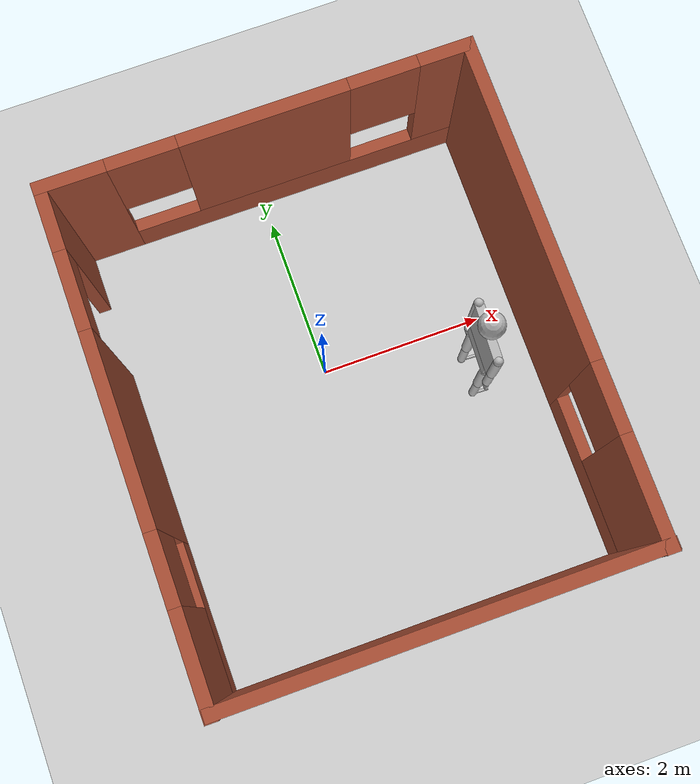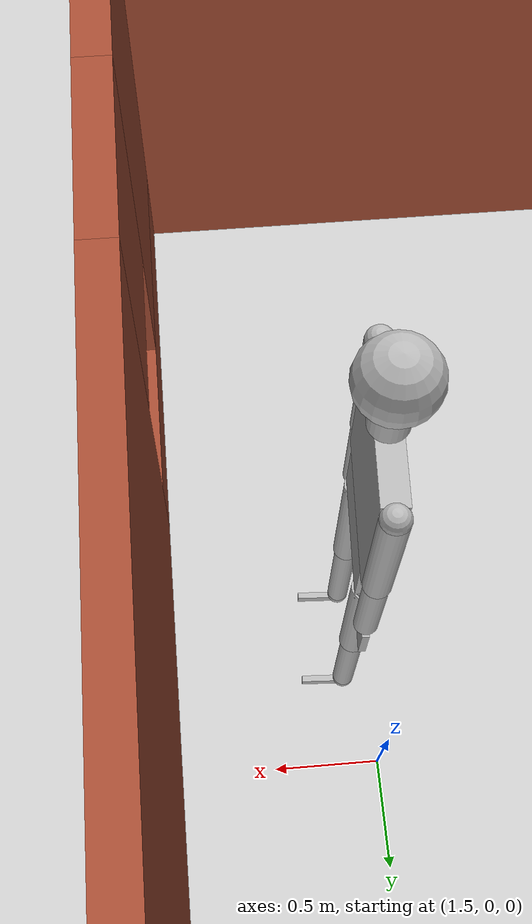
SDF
<sdf version="1.7">
 <world name="default">
  <light name="sun" type="directional">
   <pose>0 0 10 0 -0 0</pose>
   <diffuse>0.8 0.8 0.8 1</diffuse>
   <specular>0.2 0.2 0.2 1</specular>
   <attenuation>
    <range>1000</range>
    <constant>0.9</constant>
    <linear>0.01</linear>
    <quadratic>0.001</quadratic>
   </attenuation>
   <direction>-0.5 0.1 -0.9</direction>
   <spot><inner_angle>0</inner_angle><outer_angle>0</outer_angle><falloff>0</falloff></spot>
  </light>
  <model name="ground_plane">
   <static>1</static>
   <link name="link">
    <collision name="collision">
     <geometry><plane><normal>0 0 1</normal><size>100 100</size></plane></geometry>
     <surface>
      <contact><collide_bitmask>65535</collide_bitmask></contact>
      <friction><ode><mu>100</mu><mu2>50</mu2></ode></friction>
     </surface>
    </collision>
    <visual name="visual">
     <cast_shadows>0</cast_shadows>
     <geometry><plane><normal>0 0 1</normal><size>100 100</size></plane></geometry>
     <material>
      <script><uri>file://media/materials/scripts/gazebo.material</uri><name>Gazebo/Grey</name></script>
     </material>
    </visual>
   </link>
  </model>
  <gravity>0 0 -9.8</gravity>
  <magnetic_field>6e-06 2.3e-05 -4.2e-05</magnetic_field>
  <atmosphere type="adiabatic"/>
  <physics type="ode">
   <max_step_size>0.001</max_step_size>
   <real_time_factor>1</real_time_factor>
   <real_time_update_rate>1000</real_time_update_rate>
  </physics>
  <scene><ambient>0.4 0.4 0.4 1</ambient><background>0.7 0.7 0.7 1</background><shadows>1</shadows></scene>
  <audio><device>default</device></audio>
  <spherical_coordinates>
   <surface_model>EARTH_WGS84</surface_model>
   <latitude_deg>0</latitude_deg>
   <longitude_deg>0</longitude_deg>
   <elevation>0</elevation>
   <heading_deg>0</heading_deg>
  </spherical_coordinates>
  <model name="SimpleBuilding">
   <pose>0.104168 0.47598 0 0 -0 0</pose>
   <link name="Wall_0">
    <pose>0.005 1.91257 0 0 -0 0</pose>
    <visual name="Wall_0_Visual_0">
     <pose>-2.0975 0 1.25 0 -0 0</pose>
     <geometry><box><size>0.805 0.15 2.5</size></box></geometry>
     <material>
      <script><uri>file://media/materials/scripts/gazebo.material</uri><name>Gazebo/Bricks</name></script>
      <ambient>1 1 1 1</ambient>
     </material>
     <meta><layer>0</layer></meta>
    </visual>
    <collision name="Wall_0_Collision_0">
     <geometry><box><size>0.805 0.15 2.5</size></box></geometry>
     <pose>-2.0975 0 1.25 0 -0 0</pose>
    </collision>
    <visual name="Wall_0_Visual_1">
     <pose>0.4025 0 0.25 0 -0 0</pose>
     <geometry><box><size>4.195 0.15 0.5</size></box></geometry>
     <material>
      <script><uri>file://media/materials/scripts/gazebo.material</uri><name>Gazebo/Bricks</name></script>
      <ambient>1 1 1 1</ambient>
     </material>
     <meta><layer>0</layer></meta>
    </visual>
    <collision name="Wall_0_Collision_1">
     <geometry><box><size>4.195 0.15 0.5</size></box></geometry>
     <pose>0.4025 0 0.25 0 -0 0</pose>
    </collision>
    <visual name="Wall_0_Visual_2">
     <pose>0.075 0 1.5 0 -0 0</pose>
     <geometry><box><size>1.94 0.15 2</size></box></geometry>
     <material>
      <script><uri>file://media/materials/scripts/gazebo.material</uri><name>Gazebo/Bricks</name></script>
      <ambient>1 1 1 1</ambient>
     </material>
     <meta><layer>0</layer></meta>
    </visual>
    <collision name="Wall_0_Collision_2">
     <geometry><box><size>1.94 0.15 2</size></box></geometry>
     <pose>0.075 0 1.5 0 -0 0</pose>
    </collision>
    <visual name="Wall_0_Visual_3">
     <pose>2.1725 0 1.5 0 -0 0</pose>
     <geometry><box><size>0.655 0.15 2</size></box></geometry>
     <material>
      <script><uri>file://media/materials/scripts/gazebo.material</uri><name>Gazebo/Bricks</name></script>
      <ambient>1 1 1 1</ambient>
     </material>
     <meta><layer>0</layer></meta>
    </visual>
    <collision name="Wall_0_Collision_3">
     <geometry><box><size>0.655 0.15 2</size></box></geometry>
     <pose>2.1725 0 1.5 0 -0 0</pose>
    </collision>
    <visual name="Wall_0_Visual_4">
     <pose>-1.295 0 1.9 0 -0 0</pose>
     <geometry><box><size>0.8 0.15 1.2</size></box></geometry>
     <material>
      <script><uri>file://media/materials/scripts/gazebo.material</uri><name>Gazebo/Bricks</name></script>
      <ambient>1 1 1 1</ambient>
     </material>
     <meta><layer>0</layer></meta>
    </visual>
    <collision name="Wall_0_Collision_4">
     <geometry><box><size>0.8 0.15 1.2</size></box></geometry>
     <pose>-1.295 0 1.9 0 -0 0</pose>
    </collision>
    <visual name="Wall_0_Visual_5">
     <pose>1.445 0 1.9 0 -0 0</pose>
     <geometry><box><size>0.8 0.15 1.2</size></box></geometry>
     <material>
      <script><uri>file://media/materials/scripts/gazebo.material</uri><name>Gazebo/Bricks</name></script>
      <ambient>1 1 1 1</ambient>
     </material>
     <meta><layer>0</layer></meta>
    </visual>
    <collision name="Wall_0_Collision_5">
     <geometry><box><size>0.8 0.15 1.2</size></box></geometry>
     <pose>1.445 0 1.9 0 -0 0</pose>
    </collision>
   </link>
   <link name="Wall_1">
    <pose>2.425 -0.947434 0 0 -0 -1.57255</pose>
    <visual name="Wall_1_Visual_0">
     <pose>-1.0405 0 1.25 0 -0 0</pose>
     <geometry><box><size>3.78901 0.15 2.5</size></box></geometry>
     <material>
      <script><uri>file://media/materials/scripts/gazebo.material</uri><name>Gazebo/Bricks</name></script>
      <ambient>1 1 1 1</ambient>
     </material>
     <meta><layer>0</layer></meta>
    </visual>
    <collision name="Wall_1_Collision_0">
     <geometry><box><size>3.78901 0.15 2.5</size></box></geometry>
     <pose>-1.0405 0 1.25 0 -0 0</pose>
    </collision>
    <visual name="Wall_1_Visual_1">
     <pose>1.8945 0 0.25 0 -0 0</pose>
     <geometry><box><size>2.081 0.15 0.5</size></box></geometry>
     <material>
      <script><uri>file://media/materials/scripts/gazebo.material</uri><name>Gazebo/Bricks</name></script>
      <ambient>1 1 1 1</ambient>
     </material>
     <meta><layer>0</layer></meta>
    </visual>
    <collision name="Wall_1_Collision_1">
     <geometry><box><size>2.081 0.15 0.5</size></box></geometry>
     <pose>1.8945 0 0.25 0 -0 0</pose>
    </collision>
    <visual name="Wall_1_Visual_2">
     <pose>2.2945 0 1.5 0 -0 0</pose>
     <geometry><box><size>1.281 0.15 2</size></box></geometry>
     <material>
      <script><uri>file://media/materials/scripts/gazebo.material</uri><name>Gazebo/Bricks</name></script>
      <ambient>1 1 1 1</ambient>
     </material>
     <meta><layer>0</layer></meta>
    </visual>
    <collision name="Wall_1_Collision_2">
     <geometry><box><size>1.281 0.15 2</size></box></geometry>
     <pose>2.2945 0 1.5 0 -0 0</pose>
    </collision>
    <visual name="Wall_1_Visual_3">
     <pose>1.254 0 1.9 0 -0 0</pose>
     <geometry><box><size>0.8 0.15 1.2</size></box></geometry>
     <material>
      <script><uri>file://media/materials/scripts/gazebo.material</uri><name>Gazebo/Bricks</name></script>
      <ambient>1 1 1 1</ambient>
     </material>
     <meta><layer>0</layer></meta>
    </visual>
    <collision name="Wall_1_Collision_3">
     <geometry><box><size>0.8 0.15 1.2</size></box></geometry>
     <pose>1.254 0 1.9 0 -0 0</pose>
    </collision>
   </link>
   <link name="Wall_2">
    <collision name="Wall_2_Collision">
     <geometry><box><size>5 0.15 2.5</size></box></geometry>
     <pose>0 0 1.25 0 -0 0</pose>
    </collision>
    <visual name="Wall_2_Visual">
     <pose>0 0 1.25 0 -0 0</pose>
     <geometry><box><size>5 0.15 2.5</size></box></geometry>
     <material>
      <script><uri>file://media/materials/scripts/gazebo.material</uri><name>Gazebo/Bricks</name></script>
      <ambient>1 1 1 1</ambient>
     </material>
     <meta><layer>0</layer></meta>
    </visual>
    <pose>0.005 -3.79743 0 0 -0 3.14159</pose>
   </link>
   <link name="Wall_5">
    <pose>-2.425 -0.947434 0 0 -0 -1.57255</pose>
    <visual name="Wall_5_Visual_0">
     <pose>-2.52751 0 1.25 0 -0 0</pose>
     <geometry><box><size>0.814981 0.15 2.5</size></box></geometry>
     <material>
      <script><uri>file://media/materials/scripts/gazebo.material</uri><name>Gazebo/Bricks</name></script>
      <ambient>0.760784 0.662745 0.627451 1</ambient>
     </material>
     <meta><layer>0</layer></meta>
    </visual>
    <collision name="Wall_5_Collision_0">
     <geometry><box><size>0.814981 0.15 2.5</size></box></geometry>
     <pose>-2.52751 0 1.25 0 -0 0</pose>
    </collision>
    <visual name="Wall_5_Visual_1">
     <pose>-0.125 0 1.25 0 -0 0</pose>
     <geometry><box><size>2.19005 0.15 2.5</size></box></geometry>
     <material>
      <script><uri>file://media/materials/scripts/gazebo.material</uri><name>Gazebo/Bricks</name></script>
      <ambient>0.760784 0.662745 0.627451 1</ambient>
     </material>
     <meta><layer>0</layer></meta>
    </visual>
    <collision name="Wall_5_Collision_1">
     <geometry><box><size>2.19005 0.15 2.5</size></box></geometry>
     <pose>-0.125 0 1.25 0 -0 0</pose>
    </collision>
    <visual name="Wall_5_Visual_2">
     <pose>1.95251 0 0.25 0 -0 0</pose>
     <geometry><box><size>1.96498 0.15 0.5</size></box></geometry>
     <material>
      <script><uri>file://media/materials/scripts/gazebo.material</uri><name>Gazebo/Bricks</name></script>
      <ambient>0.760784 0.662745 0.627451 1</ambient>
     </material>
     <meta><layer>0</layer></meta>
    </visual>
    <collision name="Wall_5_Collision_2">
     <geometry><box><size>1.96498 0.15 0.5</size></box></geometry>
     <pose>1.95251 0 0.25 0 -0 0</pose>
    </collision>
    <visual name="Wall_5_Visual_3">
     <pose>2.35251 0 1.5 0 -0 0</pose>
     <geometry><box><size>1.16498 0.15 2</size></box></geometry>
     <material>
      <script><uri>file://media/materials/scripts/gazebo.material</uri><name>Gazebo/Bricks</name></script>
      <ambient>0.760784 0.662745 0.627451 1</ambient>
     </material>
     <meta><layer>0</layer></meta>
    </visual>
    <collision name="Wall_5_Collision_3">
     <geometry><box><size>1.16498 0.15 2</size></box></geometry>
     <pose>2.35251 0 1.5 0 -0 0</pose>
    </collision>
    <visual name="Wall_5_Visual_4">
     <pose>1.37002 0 1.9 0 -0 0</pose>
     <geometry><box><size>0.8 0.15 1.2</size></box></geometry>
     <material>
      <script><uri>file://media/materials/scripts/gazebo.material</uri><name>Gazebo/Bricks</name></script>
      <ambient>0.760784 0.662745 0.627451 1</ambient>
     </material>
     <meta><layer>0</layer></meta>
    </visual>
    <collision name="Wall_5_Collision_4">
     <geometry><box><size>0.8 0.15 1.2</size></box></geometry>
     <pose>1.37002 0 1.9 0 -0 0</pose>
    </collision>
    <visual name="Wall_5_Visual_5">
     <pose>-1.67002 0 2.25 0 -0 0</pose>
     <geometry><box><size>0.9 0.15 0.5</size></box></geometry>
     <material>
      <script><uri>file://media/materials/scripts/gazebo.material</uri><name>Gazebo/Bricks</name></script>
      <ambient>0.760784 0.662745 0.627451 1</ambient>
     </material>
     <meta><layer>0</layer></meta>
    </visual>
    <collision name="Wall_5_Collision_5">
     <geometry><box><size>0.9 0.15 0.5</size></box></geometry>
     <pose>-1.67002 0 2.25 0 -0 0</pose>
    </collision>
   </link>
   <static>1</static>
  </model>
  <model name="ragdoll">
   <pose>1.62202 -0.641848 1.39994 3.1e-05 0.002282 -0.047532</pose>
   <link name="hip">
    <inertial>
     <inertia><ixx>0.1</ixx><ixy>0</ixy><ixz>0</ixz><iyy>0.1</iyy><iyz>0</iyz><izz>0.1</izz></inertia>
     <mass>10</mass>
    </inertial>
    <collision name="hip_geom">
     <pose>0 0 0.125 0 -0 0</pose>
     <geometry><box><size>0.1 0.5 0.25</size></box></geometry>
     <surface>
      <friction><ode><mu>-1</mu><mu2>-1</mu2><fdir1>0 0 0</fdir1><slip1>0</slip1><slip2>0</slip2></ode></friction>
      <bounce><restitution_coefficient>0</restitution_coefficient><threshold>100000</threshold></bounce>
      <contact>
       <ode>
        <soft_cfm>0</soft_cfm>
        <soft_erp>0.2</soft_erp>
        <kp>1e+12</kp>
        <kd>1</kd>
        <max_vel>0</max_vel>
        <min_depth>0.001</min_depth>
       </ode>
      </contact>
     </surface>
    </collision>
    <visual name="hip_geom_visual">
     <pose>0 0 0.125 0 -0 0</pose>
     <geometry><box><size>0.1 0.5 0.25</size></box></geometry>
    </visual>
    <gravity>0</gravity>
   </link>
   <link name="l_thigh_pan">
    <pose>0 0.22 0 0 -0 0</pose>
    <inertial>
     <inertia><ixx>0.01</ixx><ixy>0</ixy><ixz>0</ixz><iyy>0.01</iyy><iyz>0</iyz><izz>0.01</izz></inertia>
     <mass>1</mass>
    </inertial>
    <collision name="l_thigh_pan_geom">
     <pose>0 0 -0.03 0 -0 0</pose>
     <geometry><sphere><radius>0.06</radius></sphere></geometry>
     <surface>
      <friction><ode><mu>-1</mu><mu2>-1</mu2><fdir1>0 0 0</fdir1><slip1>0</slip1><slip2>0</slip2></ode></friction>
      <bounce><restitution_coefficient>0</restitution_coefficient><threshold>100000</threshold></bounce>
      <contact>
       <ode>
        <soft_cfm>0</soft_cfm>
        <soft_erp>0.2</soft_erp>
        <kp>1e+12</kp>
        <kd>1</kd>
        <max_vel>0</max_vel>
        <min_depth>0.001</min_depth>
       </ode>
      </contact>
     </surface>
    </collision>
    <visual name="l_thigh_pan_geom_visual">
     <pose>0 0 -0.03 0 -0 0</pose>
     <geometry><sphere><radius>0.06</radius></sphere></geometry>
    </visual>
    <gravity>0</gravity>
   </link>
   <link name="l_thigh_lift">
    <pose>0 0.22 0 0 -0 0</pose>
    <inertial>
     <inertia><ixx>0.05</ixx><ixy>0</ixy><ixz>0</ixz><iyy>0.05</iyy><iyz>0</iyz><izz>0.05</izz></inertia>
     <mass>5</mass>
    </inertial>
    <collision name="l_thigh_lift_geom">
     <pose>0 0 -0.35 0 -0 0</pose>
     <geometry><cylinder><radius>0.06</radius><length>0.7</length></cylinder></geometry>
     <surface>
      <friction><ode><mu>-1</mu><mu2>-1</mu2><fdir1>0 0 0</fdir1><slip1>0</slip1><slip2>0</slip2></ode></friction>
      <bounce><restitution_coefficient>0</restitution_coefficient><threshold>100000</threshold></bounce>
      <contact>
       <ode>
        <soft_cfm>0</soft_cfm>
        <soft_erp>0.2</soft_erp>
        <kp>1e+12</kp>
        <kd>1</kd>
        <max_vel>0</max_vel>
        <min_depth>0.001</min_depth>
       </ode>
      </contact>
     </surface>
    </collision>
    <visual name="l_thigh_lift_geom_visual">
     <pose>0 0 -0.35 0 -0 0</pose>
     <geometry><cylinder><radius>0.06</radius><length>0.7</length></cylinder></geometry>
    </visual>
    <gravity>0</gravity>
   </link>
   <link name="l_calf">
    <pose>0 0.22 -0.7 0 -0 0</pose>
    <inertial>
     <inertia><ixx>0.02</ixx><ixy>0</ixy><ixz>0</ixz><iyy>0.02</iyy><iyz>0</iyz><izz>0.02</izz></inertia>
     <mass>2</mass>
    </inertial>
    <collision name="l_calf_geom">
     <pose>0 0 -0.3 0 -0 0</pose>
     <geometry><cylinder><radius>0.05</radius><length>0.6</length></cylinder></geometry>
     <surface>
      <friction><ode><mu>-1</mu><mu2>-1</mu2><fdir1>0 0 0</fdir1><slip1>0</slip1><slip2>0</slip2></ode></friction>
      <bounce><restitution_coefficient>0</restitution_coefficient><threshold>100000</threshold></bounce>
      <contact>
       <ode>
        <soft_cfm>0</soft_cfm>
        <soft_erp>0.2</soft_erp>
        <kp>1e+12</kp>
        <kd>1</kd>
        <max_vel>0</max_vel>
        <min_depth>0.001</min_depth>
       </ode>
      </contact>
     </surface>
    </collision>
    <visual name="l_calf_geom_visual">
     <pose>0 0 -0.3 0 -0 0</pose>
     <geometry><cylinder><radius>0.05</radius><length>0.6</length></cylinder></geometry>
    </visual>
    <gravity>0</gravity>
   </link>
   <link name="l_ankle">
    <pose>0 0.22 -1.325 0 -0 0</pose>
    <inertial>
     <inertia><ixx>0.01</ixx><ixy>0</ixy><ixz>0</ixz><iyy>0.01</iyy><iyz>0</iyz><izz>0.01</izz></inertia>
     <mass>1</mass>
    </inertial>
    <collision name="l_ankle_geom">
     <geometry><sphere><radius>0.05</radius></sphere></geometry>
     <surface>
      <friction><ode><mu>-1</mu><mu2>-1</mu2><fdir1>0 0 0</fdir1><slip1>0</slip1><slip2>0</slip2></ode></friction>
      <bounce><restitution_coefficient>0</restitution_coefficient><threshold>100000</threshold></bounce>
      <contact>
       <ode>
        <soft_cfm>0</soft_cfm>
        <soft_erp>0.2</soft_erp>
        <kp>1e+12</kp>
        <kd>1</kd>
        <max_vel>0</max_vel>
        <min_depth>0.001</min_depth>
       </ode>
      </contact>
     </surface>
    </collision>
    <visual name="l_ankle_geom_visual"><geometry><sphere><radius>0.05</radius></sphere></geometry></visual>
    <gravity>0</gravity>
   </link>
   <link name="l_foot">
    <pose>0 0.22 -1.35 0 -0 0</pose>
    <inertial>
     <pose>0.1 0 0 0 -0 0</pose>
     <inertia><ixx>0.01</ixx><ixy>0</ixy><ixz>0</ixz><iyy>0.01</iyy><iyz>0</iyz><izz>0.01</izz></inertia>
     <mass>1</mass>
    </inertial>
    <collision name="l_foot_geom">
     <pose>0.1 0 -0.025 0 -0 0</pose>
     <geometry><box><size>0.2 0.03 0.05</size></box></geometry>
     <surface>
      <friction><ode><mu>-1</mu><mu2>-1</mu2><fdir1>0 0 0</fdir1><slip1>0</slip1><slip2>0</slip2></ode></friction>
      <bounce><restitution_coefficient>0</restitution_coefficient><threshold>100000</threshold></bounce>
      <contact>
       <ode>
        <soft_cfm>0</soft_cfm>
        <soft_erp>0.2</soft_erp>
        <kp>1e+12</kp>
        <kd>1</kd>
        <max_vel>0</max_vel>
        <min_depth>0.001</min_depth>
       </ode>
      </contact>
     </surface>
    </collision>
    <visual name="l_foot_geom_visual">
     <pose>0.1 0 -0.025 0 -0 0</pose>
     <geometry><box><size>0.2 0.03 0.05</size></box></geometry>
    </visual>
   </link>
   <link name="r_thigh_pan">
    <pose>0 -0.22 0 0 -0 0</pose>
    <inertial>
     <inertia><ixx>0.01</ixx><ixy>0</ixy><ixz>0</ixz><iyy>0.01</iyy><iyz>0</iyz><izz>0.01</izz></inertia>
     <mass>1</mass>
    </inertial>
    <collision name="r_thigh_pan_geom">
     <pose>0 0 -0.03 0 -0 0</pose>
     <geometry><sphere><radius>0.06</radius></sphere></geometry>
     <surface>
      <friction><ode><mu>-1</mu><mu2>-1</mu2><fdir1>0 0 0</fdir1><slip1>0</slip1><slip2>0</slip2></ode></friction>
      <bounce><restitution_coefficient>0</restitution_coefficient><threshold>100000</threshold></bounce>
      <contact>
       <ode>
        <soft_cfm>0</soft_cfm>
        <soft_erp>0.2</soft_erp>
        <kp>1e+12</kp>
        <kd>1</kd>
        <max_vel>0</max_vel>
        <min_depth>0.001</min_depth>
       </ode>
      </contact>
     </surface>
    </collision>
    <visual name="r_thigh_pan_geom_visual">
     <pose>0 0 -0.03 0 -0 0</pose>
     <geometry><sphere><radius>0.06</radius></sphere></geometry>
    </visual>
    <gravity>0</gravity>
   </link>
   <link name="r_thigh_lift">
    <pose>0 -0.22 0 0 -0 0</pose>
    <inertial>
     <inertia><ixx>0.05</ixx><ixy>0</ixy><ixz>0</ixz><iyy>0.05</iyy><iyz>0</iyz><izz>0.05</izz></inertia>
     <mass>5</mass>
    </inertial>
    <collision name="r_thigh_lift_geom">
     <pose>0 0 -0.35 0 -0 0</pose>
     <geometry><cylinder><radius>0.06</radius><length>0.7</length></cylinder></geometry>
     <surface>
      <friction><ode><mu>-1</mu><mu2>-1</mu2><fdir1>0 0 0</fdir1><slip1>0</slip1><slip2>0</slip2></ode></friction>
      <bounce><restitution_coefficient>0</restitution_coefficient><threshold>100000</threshold></bounce>
      <contact>
       <ode>
        <soft_cfm>0</soft_cfm>
        <soft_erp>0.2</soft_erp>
        <kp>1e+12</kp>
        <kd>1</kd>
        <max_vel>0</max_vel>
        <min_depth>0.001</min_depth>
       </ode>
      </contact>
     </surface>
    </collision>
    <visual name="r_thigh_lift_geom_visual">
     <pose>0 0 -0.35 0 -0 0</pose>
     <geometry><cylinder><radius>0.06</radius><length>0.7</length></cylinder></geometry>
    </visual>
    <gravity>0</gravity>
   </link>
   <link name="r_calf">
    <pose>0 -0.22 -0.7 0 -0 0</pose>
    <inertial>
     <inertia><ixx>0.02</ixx><ixy>0</ixy><ixz>0</ixz><iyy>0.02</iyy><iyz>0</iyz><izz>0.02</izz></inertia>
     <mass>2</mass>
    </inertial>
    <collision name="r_calf_geom">
     <pose>0 0 -0.3 0 -0 0</pose>
     <geometry><cylinder><radius>0.05</radius><length>0.6</length></cylinder></geometry>
     <surface>
      <friction><ode><mu>-1</mu><mu2>-1</mu2><fdir1>0 0 0</fdir1><slip1>0</slip1><slip2>0</slip2></ode></friction>
      <bounce><restitution_coefficient>0</restitution_coefficient><threshold>100000</threshold></bounce>
      <contact>
       <ode>
        <soft_cfm>0</soft_cfm>
        <soft_erp>0.2</soft_erp>
        <kp>1e+12</kp>
        <kd>1</kd>
        <max_vel>0</max_vel>
        <min_depth>0.001</min_depth>
       </ode>
      </contact>
     </surface>
    </collision>
    <visual name="r_calf_geom_visual">
     <pose>0 0 -0.3 0 -0 0</pose>
     <geometry><cylinder><radius>0.05</radius><length>0.6</length></cylinder></geometry>
    </visual>
    <gravity>0</gravity>
   </link>
   <link name="r_ankle">
    <pose>0 -0.22 -1.325 0 -0 0</pose>
    <inertial>
     <inertia><ixx>0.01</ixx><ixy>0</ixy><ixz>0</ixz><iyy>0.01</iyy><iyz>0</iyz><izz>0.01</izz></inertia>
     <mass>1</mass>
    </inertial>
    <collision name="r_ankle_geom">
     <geometry><sphere><radius>0.05</radius></sphere></geometry>
     <surface>
      <friction><ode><mu>-1</mu><mu2>-1</mu2><fdir1>0 0 0</fdir1><slip1>0</slip1><slip2>0</slip2></ode></friction>
      <bounce><restitution_coefficient>0</restitution_coefficient><threshold>100000</threshold></bounce>
      <contact>
       <ode>
        <soft_cfm>0</soft_cfm>
        <soft_erp>0.2</soft_erp>
        <kp>1e+12</kp>
        <kd>1</kd>
        <max_vel>0</max_vel>
        <min_depth>0.001</min_depth>
       </ode>
      </contact>
     </surface>
    </collision>
    <visual name="r_ankle_geom_visual"><geometry><sphere><radius>0.05</radius></sphere></geometry></visual>
    <gravity>0</gravity>
   </link>
   <link name="r_foot">
    <pose>0 -0.22 -1.35 0 -0 0</pose>
    <inertial>
     <pose>0.1 0 0 0 -0 0</pose>
     <inertia><ixx>0.01</ixx><ixy>0</ixy><ixz>0</ixz><iyy>0.01</iyy><iyz>0</iyz><izz>0.01</izz></inertia>
     <mass>1</mass>
    </inertial>
    <collision name="r_foot_geom">
     <pose>0.1 0 -0.025 0 -0 0</pose>
     <geometry><box><size>0.2 0.03 0.05</size></box></geometry>
     <surface>
      <friction><ode><mu>-1</mu><mu2>-1</mu2><fdir1>0 0 0</fdir1><slip1>0</slip1><slip2>0</slip2></ode></friction>
      <bounce><restitution_coefficient>0</restitution_coefficient><threshold>100000</threshold></bounce>
      <contact>
       <ode>
        <soft_cfm>0</soft_cfm>
        <soft_erp>0.2</soft_erp>
        <kp>1e+12</kp>
        <kd>1</kd>
        <max_vel>0</max_vel>
        <min_depth>0.001</min_depth>
       </ode>
      </contact>
     </surface>
    </collision>
    <visual name="r_foot_geom_visual">
     <pose>0.1 0 -0.025 0 -0 0</pose>
     <geometry><box><size>0.2 0.03 0.05</size></box></geometry>
    </visual>
   </link>
   <link name="torso">
    <pose>0 0 0.25 0 -0 0</pose>
    <inertial>
     <inertia><ixx>0.3</ixx><ixy>0</ixy><ixz>0</ixz><iyy>0.3</iyy><iyz>0</iyz><izz>0.3</izz></inertia>
     <mass>30</mass>
    </inertial>
    <collision name="torso_geom">
     <pose>0 0 0.35 0 -0 0</pose>
     <geometry><box><size>0.1 0.6 0.7</size></box></geometry>
     <surface>
      <friction><ode><mu>-1</mu><mu2>-1</mu2><fdir1>0 0 0</fdir1><slip1>0</slip1><slip2>0</slip2></ode></friction>
      <bounce><restitution_coefficient>0</restitution_coefficient><threshold>100000</threshold></bounce>
      <contact>
       <ode>
        <soft_cfm>0</soft_cfm>
        <soft_erp>0.2</soft_erp>
        <kp>1e+12</kp>
        <kd>1</kd>
        <max_vel>0</max_vel>
        <min_depth>0.001</min_depth>
       </ode>
      </contact>
     </surface>
    </collision>
    <visual name="torso_geom_visual">
     <pose>0 0 0.35 0 -0 0</pose>
     <geometry><box><size>0.1 0.6 0.7</size></box></geometry>
    </visual>
    <gravity>0</gravity>
   </link>
   <link name="l_shoulder">
    <pose>0 0.3275 0.9225 0 -0 0</pose>
    <inertial>
     <inertia><ixx>0.01</ixx><ixy>0</ixy><ixz>0</ixz><iyy>0.01</iyy><iyz>0</iyz><izz>0.01</izz></inertia>
     <mass>1</mass>
    </inertial>
    <collision name="l_shoulder_geom">
     <geometry><sphere><radius>0.055</radius></sphere></geometry>
     <surface>
      <friction><ode><mu>-1</mu><mu2>-1</mu2><fdir1>0 0 0</fdir1><slip1>0</slip1><slip2>0</slip2></ode></friction>
      <bounce><restitution_coefficient>0</restitution_coefficient><threshold>100000</threshold></bounce>
      <contact>
       <ode>
        <soft_cfm>0</soft_cfm>
        <soft_erp>0.2</soft_erp>
        <kp>1e+12</kp>
        <kd>1</kd>
        <max_vel>0</max_vel>
        <min_depth>0.001</min_depth>
       </ode>
      </contact>
     </surface>
    </collision>
    <visual name="l_shoulder_geom_visual"><geometry><sphere><radius>0.055</radius></sphere></geometry></visual>
    <gravity>0</gravity>
   </link>
   <link name="l_upper_arm">
    <pose>0 0.3275 0.9225 0 -0 0</pose>
    <inertial>
     <inertia><ixx>0.02</ixx><ixy>0</ixy><ixz>0</ixz><iyy>0.02</iyy><iyz>0</iyz><izz>0.02</izz></inertia>
     <mass>2</mass>
    </inertial>
    <collision name="l_upper_arm_geom">
     <pose>0 0 -0.3 0 -0 0</pose>
     <geometry><cylinder><radius>0.055</radius><length>0.6</length></cylinder></geometry>
     <surface>
      <friction><ode><mu>-1</mu><mu2>-1</mu2><fdir1>0 0 0</fdir1><slip1>0</slip1><slip2>0</slip2></ode></friction>
      <bounce><restitution_coefficient>0</restitution_coefficient><threshold>100000</threshold></bounce>
      <contact>
       <ode>
        <soft_cfm>0</soft_cfm>
        <soft_erp>0.2</soft_erp>
        <kp>1e+12</kp>
        <kd>1</kd>
        <max_vel>0</max_vel>
        <min_depth>0.001</min_depth>
       </ode>
      </contact>
     </surface>
    </collision>
    <visual name="l_upper_arm_geom_visual">
     <pose>0 0 -0.3 0 -0 0</pose>
     <geometry><cylinder><radius>0.055</radius><length>0.6</length></cylinder></geometry>
    </visual>
    <gravity>0</gravity>
   </link>
   <link name="l_forearm">
    <pose>0 0.3275 0.3225 0 -0 0</pose>
    <inertial>
     <inertia><ixx>0.01</ixx><ixy>0</ixy><ixz>0</ixz><iyy>0.01</iyy><iyz>0</iyz><izz>0.01</izz></inertia>
     <mass>1</mass>
    </inertial>
    <collision name="l_forearm_geom">
     <pose>0 0 -0.225 0 -0 0</pose>
     <geometry><cylinder><radius>0.05</radius><length>0.45</length></cylinder></geometry>
     <surface>
      <friction><ode><mu>-1</mu><mu2>-1</mu2><fdir1>0 0 0</fdir1><slip1>0</slip1><slip2>0</slip2></ode></friction>
      <bounce><restitution_coefficient>0</restitution_coefficient><threshold>100000</threshold></bounce>
      <contact>
       <ode>
        <soft_cfm>0</soft_cfm>
        <soft_erp>0.2</soft_erp>
        <kp>1e+12</kp>
        <kd>1</kd>
        <max_vel>0</max_vel>
        <min_depth>0.001</min_depth>
       </ode>
      </contact>
     </surface>
    </collision>
    <visual name="l_forearm_geom_visual">
     <pose>0 0 -0.225 0 -0 0</pose>
     <geometry><cylinder><radius>0.05</radius><length>0.45</length></cylinder></geometry>
    </visual>
    <gravity>0</gravity>
   </link>
   <link name="l_wrist">
    <pose>0 0.3275 -0.1425 0 -0 0</pose>
    <inertial>
     <inertia><ixx>0.01</ixx><ixy>0</ixy><ixz>0</ixz><iyy>0.01</iyy><iyz>0</iyz><izz>0.01</izz></inertia>
     <mass>1</mass>
    </inertial>
    <collision name="l_wrist_geom">
     <geometry><sphere><radius>0.03</radius></sphere></geometry>
     <surface>
      <friction><ode><mu>-1</mu><mu2>-1</mu2><fdir1>0 0 0</fdir1><slip1>0</slip1><slip2>0</slip2></ode></friction>
      <bounce><restitution_coefficient>0</restitution_coefficient><threshold>100000</threshold></bounce>
      <contact>
       <ode>
        <soft_cfm>0</soft_cfm>
        <soft_erp>0.2</soft_erp>
        <kp>1e+12</kp>
        <kd>1</kd>
        <max_vel>0</max_vel>
        <min_depth>0.001</min_depth>
       </ode>
      </contact>
     </surface>
    </collision>
    <visual name="l_wrist_geom_visual"><geometry><sphere><radius>0.03</radius></sphere></geometry></visual>
    <gravity>0</gravity>
   </link>
   <link name="l_hand">
    <pose>0 0.3275 -0.1575 0 -0 0</pose>
    <inertial>
     <inertia><ixx>0.01</ixx><ixy>0</ixy><ixz>0</ixz><iyy>0.01</iyy><iyz>0</iyz><izz>0.01</izz></inertia>
     <mass>1</mass>
    </inertial>
    <collision name="l_hand_geom">
     <pose>0 0 -0.1 0 -0 0</pose>
     <geometry><box><size>0.03 0.1 0.2</size></box></geometry>
     <surface>
      <friction><ode><mu>-1</mu><mu2>-1</mu2><fdir1>0 0 0</fdir1><slip1>0</slip1><slip2>0</slip2></ode></friction>
      <bounce><restitution_coefficient>0</restitution_coefficient><threshold>100000</threshold></bounce>
      <contact>
       <ode>
        <soft_cfm>0</soft_cfm>
        <soft_erp>0.2</soft_erp>
        <kp>1e+12</kp>
        <kd>1</kd>
        <max_vel>0</max_vel>
        <min_depth>0.001</min_depth>
       </ode>
      </contact>
     </surface>
    </collision>
    <visual name="l_hand_geom_visual">
     <pose>0 0 -0.1 0 -0 0</pose>
     <geometry><box><size>0.03 0.1 0.2</size></box></geometry>
    </visual>
    <gravity>0</gravity>
   </link>
   <link name="neck">
    <pose>0 0 0.95 0 -0 0</pose>
    <inertial>
     <inertia><ixx>0.01</ixx><ixy>0</ixy><ixz>0</ixz><iyy>0.01</iyy><iyz>0</iyz><izz>0.01</izz></inertia>
     <mass>1</mass>
    </inertial>
    <collision name="neck_geom">
     <pose>0 0 0.1 0 -0 0</pose>
     <geometry><cylinder><radius>0.075</radius><length>0.2</length></cylinder></geometry>
     <surface>
      <friction><ode><mu>-1</mu><mu2>-1</mu2><fdir1>0 0 0</fdir1><slip1>0</slip1><slip2>0</slip2></ode></friction>
      <bounce><restitution_coefficient>0</restitution_coefficient><threshold>100000</threshold></bounce>
      <contact>
       <ode>
        <soft_cfm>0</soft_cfm>
        <soft_erp>0.2</soft_erp>
        <kp>1e+12</kp>
        <kd>1</kd>
        <max_vel>0</max_vel>
        <min_depth>0.001</min_depth>
       </ode>
      </contact>
     </surface>
    </collision>
    <visual name="neck_geom_visual">
     <pose>0 0 0.1 0 -0 0</pose>
     <geometry><cylinder><radius>0.075</radius><length>0.2</length></cylinder></geometry>
    </visual>
    <gravity>0</gravity>
   </link>
   <link name="head">
    <pose>0 0 1.225 0 -0 0</pose>
    <inertial>
     <inertia><ixx>0.1</ixx><ixy>0</ixy><ixz>0</ixz><iyy>0.1</iyy><iyz>0</iyz><izz>0.1</izz></inertia>
     <mass>10</mass>
    </inertial>
    <collision name="head_geom">
     <geometry><sphere><radius>0.15</radius></sphere></geometry>
     <surface>
      <friction><ode><mu>-1</mu><mu2>-1</mu2><fdir1>0 0 0</fdir1><slip1>0</slip1><slip2>0</slip2></ode></friction>
      <bounce><restitution_coefficient>0</restitution_coefficient><threshold>100000</threshold></bounce>
      <contact>
       <ode>
        <soft_cfm>0</soft_cfm>
        <soft_erp>0.2</soft_erp>
        <kp>1e+12</kp>
        <kd>1</kd>
        <max_vel>0</max_vel>
        <min_depth>0.001</min_depth>
       </ode>
      </contact>
     </surface>
    </collision>
    <visual name="head_geom_visual"><geometry><sphere><radius>0.15</radius></sphere></geometry></visual>
    <gravity>0</gravity>
   </link>
   <link name="r_shoulder">
    <pose>0 -0.3275 0.9225 0 -0 0</pose>
    <inertial>
     <inertia><ixx>0.01</ixx><ixy>0</ixy><ixz>0</ixz><iyy>0.01</iyy><iyz>0</iyz><izz>0.01</izz></inertia>
     <mass>1</mass>
    </inertial>
    <collision name="r_shoulder_geom">
     <geometry><sphere><radius>0.055</radius></sphere></geometry>
     <surface>
      <friction><ode><mu>-1</mu><mu2>-1</mu2><fdir1>0 0 0</fdir1><slip1>0</slip1><slip2>0</slip2></ode></friction>
      <bounce><restitution_coefficient>0</restitution_coefficient><threshold>100000</threshold></bounce>
      <contact>
       <ode>
        <soft_cfm>0</soft_cfm>
        <soft_erp>0.2</soft_erp>
        <kp>1e+12</kp>
        <kd>1</kd>
        <max_vel>0</max_vel>
        <min_depth>0.001</min_depth>
       </ode>
      </contact>
     </surface>
    </collision>
    <visual name="r_shoulder_geom_visual"><geometry><sphere><radius>0.055</radius></sphere></geometry></visual>
    <gravity>0</gravity>
   </link>
   <link name="r_upper_arm">
    <pose>0 -0.3275 0.9225 0 -0 0</pose>
    <inertial>
     <inertia><ixx>0.02</ixx><ixy>0</ixy><ixz>0</ixz><iyy>0.02</iyy><iyz>0</iyz><izz>0.02</izz></inertia>
     <mass>2</mass>
    </inertial>
    <collision name="r_upper_arm_geom">
     <pose>0 0 -0.3 0 -0 0</pose>
     <geometry><cylinder><radius>0.055</radius><length>0.6</length></cylinder></geometry>
     <surface>
      <friction><ode><mu>-1</mu><mu2>-1</mu2><fdir1>0 0 0</fdir1><slip1>0</slip1><slip2>0</slip2></ode></friction>
      <bounce><restitution_coefficient>0</restitution_coefficient><threshold>100000</threshold></bounce>
      <contact>
       <ode>
        <soft_cfm>0</soft_cfm>
        <soft_erp>0.2</soft_erp>
        <kp>1e+12</kp>
        <kd>1</kd>
        <max_vel>0</max_vel>
        <min_depth>0.001</min_depth>
       </ode>
      </contact>
     </surface>
    </collision>
    <visual name="r_upper_arm_geom_visual">
     <pose>0 0 -0.3 0 -0 0</pose>
     <geometry><cylinder><radius>0.055</radius><length>0.6</length></cylinder></geometry>
    </visual>
    <gravity>0</gravity>
   </link>
   <link name="r_forearm">
    <pose>0 -0.3275 0.3225 0 -0 0</pose>
    <inertial>
     <inertia><ixx>0.01</ixx><ixy>0</ixy><ixz>0</ixz><iyy>0.01</iyy><iyz>0</iyz><izz>0.01</izz></inertia>
     <mass>1</mass>
    </inertial>
    <collision name="r_forearm_geom">
     <pose>0 0 -0.225 0 -0 0</pose>
     <geometry><cylinder><radius>0.05</radius><length>0.45</length></cylinder></geometry>
     <surface>
      <friction><ode><mu>-1</mu><mu2>-1</mu2><fdir1>0 0 0</fdir1><slip1>0</slip1><slip2>0</slip2></ode></friction>
      <bounce><restitution_coefficient>0</restitution_coefficient><threshold>100000</threshold></bounce>
      <contact>
       <ode>
        <soft_cfm>0</soft_cfm>
        <soft_erp>0.2</soft_erp>
        <kp>1e+12</kp>
        <kd>1</kd>
        <max_vel>0</max_vel>
        <min_depth>0.001</min_depth>
       </ode>
      </contact>
     </surface>
    </collision>
    <visual name="r_forearm_geom_visual">
     <pose>0 0 -0.225 0 -0 0</pose>
     <geometry><cylinder><radius>0.05</radius><length>0.45</length></cylinder></geometry>
    </visual>
    <gravity>0</gravity>
   </link>
   <link name="r_wrist">
    <pose>0 -0.3275 -0.1425 0 -0 0</pose>
    <inertial>
     <inertia><ixx>0.01</ixx><ixy>0</ixy><ixz>0</ixz><iyy>0.01</iyy><iyz>0</iyz><izz>0.01</izz></inertia>
     <mass>1</mass>
    </inertial>
    <collision name="r_wrist_geom">
     <geometry><sphere><radius>0.03</radius></sphere></geometry>
     <surface>
      <friction><ode><mu>-1</mu><mu2>-1</mu2><fdir1>0 0 0</fdir1><slip1>0</slip1><slip2>0</slip2></ode></friction>
      <bounce><restitution_coefficient>0</restitution_coefficient><threshold>100000</threshold></bounce>
      <contact>
       <ode>
        <soft_cfm>0</soft_cfm>
        <soft_erp>0.2</soft_erp>
        <kp>1e+12</kp>
        <kd>1</kd>
        <max_vel>0</max_vel>
        <min_depth>0.001</min_depth>
       </ode>
      </contact>
     </surface>
    </collision>
    <visual name="r_wrist_geom_visual"><geometry><sphere><radius>0.03</radius></sphere></geometry></visual>
    <gravity>0</gravity>
   </link>
   <link name="r_hand">
    <pose>0 -0.3275 -0.1575 0 -0 0</pose>
    <inertial>
     <inertia><ixx>0.01</ixx><ixy>0</ixy><ixz>0</ixz><iyy>0.01</iyy><iyz>0</iyz><izz>0.01</izz></inertia>
     <mass>1</mass>
    </inertial>
    <collision name="r_hand_geom">
     <pose>0 0 -0.1 0 -0 0</pose>
     <geometry><box><size>0.03 0.1 0.2</size></box></geometry>
     <surface>
      <friction><ode><mu>-1</mu><mu2>-1</mu2><fdir1>0 0 0</fdir1><slip1>0</slip1><slip2>0</slip2></ode></friction>
      <bounce><restitution_coefficient>0</restitution_coefficient><threshold>100000</threshold></bounce>
      <contact>
       <ode>
        <soft_cfm>0</soft_cfm>
        <soft_erp>0.2</soft_erp>
        <kp>1e+12</kp>
        <kd>1</kd>
        <max_vel>0</max_vel>
        <min_depth>0.001</min_depth>
       </ode>
      </contact>
     </surface>
    </collision>
    <visual name="r_hand_geom_visual">
     <pose>0 0 -0.1 0 -0 0</pose>
     <geometry><box><size>0.03 0.1 0.2</size></box></geometry>
    </visual>
    <gravity>0</gravity>
   </link>
   <joint name="l_thigh_pan_joint" type="revolute">
    <parent>hip</parent>
    <child>l_thigh_pan</child>
    <axis>
     <dynamics>
      <damping>0</damping>
      <friction>0</friction>
      <spring_reference>0</spring_reference>
      <spring_stiffness>0</spring_stiffness>
     </dynamics>
     <limit><lower>-1.5708</lower><upper>1.5708</upper><effort>0</effort><velocity>0</velocity></limit>
     <xyz expressed_in="__model__">0 0 1</xyz>
    </axis>
   </joint>
   <joint name="l_thigh_lift_joint" type="revolute">
    <parent>l_thigh_pan</parent>
    <child>l_thigh_lift</child>
    <axis>
     <dynamics>
      <damping>0</damping>
      <friction>0</friction>
      <spring_reference>0</spring_reference>
      <spring_stiffness>0</spring_stiffness>
     </dynamics>
     <limit><lower>-1.5708</lower><upper>1.5708</upper><effort>0</effort><velocity>0</velocity></limit>
     <xyz expressed_in="__model__">0 1 0</xyz>
    </axis>
   </joint>
   <joint name="l_calf_joint" type="revolute">
    <parent>l_thigh_lift</parent>
    <child>l_calf</child>
    <axis>
     <dynamics>
      <damping>0</damping>
      <friction>0</friction>
      <spring_reference>0</spring_reference>
      <spring_stiffness>0</spring_stiffness>
     </dynamics>
     <limit><lower>-1.5708</lower><upper>1.5708</upper><effort>0</effort><velocity>0</velocity></limit>
     <xyz expressed_in="__model__">0 1 0</xyz>
    </axis>
   </joint>
   <joint name="l_ankle_joint" type="revolute">
    <parent>l_calf</parent>
    <child>l_ankle</child>
    <axis>
     <dynamics>
      <damping>0</damping>
      <friction>0</friction>
      <spring_reference>0</spring_reference>
      <spring_stiffness>0</spring_stiffness>
     </dynamics>
     <limit><lower>-1.5708</lower><upper>1.5708</upper><effort>0</effort><velocity>0</velocity></limit>
     <xyz expressed_in="__model__">0 1 0</xyz>
    </axis>
   </joint>
   <joint name="l_foot_joint" type="revolute">
    <parent>l_ankle</parent>
    <child>l_foot</child>
    <axis>
     <dynamics>
      <damping>0</damping>
      <friction>0</friction>
      <spring_reference>0</spring_reference>
      <spring_stiffness>0</spring_stiffness>
     </dynamics>
     <limit><lower>-1.5708</lower><upper>1.5708</upper><effort>0</effort><velocity>0</velocity></limit>
     <xyz expressed_in="__model__">1 0 0</xyz>
    </axis>
   </joint>
   <joint name="r_thigh_pan_joint" type="revolute">
    <parent>hip</parent>
    <child>r_thigh_pan</child>
    <axis>
     <dynamics>
      <damping>0</damping>
      <friction>0</friction>
      <spring_reference>0</spring_reference>
      <spring_stiffness>0</spring_stiffness>
     </dynamics>
     <limit><lower>-1.5708</lower><upper>1.5708</upper><effort>0</effort><velocity>0</velocity></limit>
     <xyz expressed_in="__model__">0 0 1</xyz>
    </axis>
   </joint>
   <joint name="r_thigh_lift_joint" type="revolute">
    <parent>r_thigh_pan</parent>
    <child>r_thigh_lift</child>
    <axis>
     <dynamics>
      <damping>0</damping>
      <friction>0</friction>
      <spring_reference>0</spring_reference>
      <spring_stiffness>0</spring_stiffness>
     </dynamics>
     <limit><lower>-1.5708</lower><upper>1.5708</upper><effort>0</effort><velocity>0</velocity></limit>
     <xyz expressed_in="__model__">0 1 0</xyz>
    </axis>
   </joint>
   <joint name="r_calf_joint" type="revolute">
    <parent>r_thigh_lift</parent>
    <child>r_calf</child>
    <axis>
     <dynamics>
      <damping>0</damping>
      <friction>0</friction>
      <spring_reference>0</spring_reference>
      <spring_stiffness>0</spring_stiffness>
     </dynamics>
     <limit><lower>-1.5708</lower><upper>1.5708</upper><effort>0</effort><velocity>0</velocity></limit>
     <xyz expressed_in="__model__">0 1 0</xyz>
    </axis>
   </joint>
   <joint name="r_ankle_joint" type="revolute">
    <parent>r_calf</parent>
    <child>r_ankle</child>
    <axis>
     <dynamics>
      <damping>0</damping>
      <friction>0</friction>
      <spring_reference>0</spring_reference>
      <spring_stiffness>0</spring_stiffness>
     </dynamics>
     <limit><lower>-1.5708</lower><upper>1.5708</upper><effort>0</effort><velocity>0</velocity></limit>
     <xyz expressed_in="__model__">0 1 0</xyz>
    </axis>
   </joint>
   <joint name="r_foot_joint" type="revolute">
    <parent>r_ankle</parent>
    <child>r_foot</child>
    <axis>
     <dynamics>
      <damping>0</damping>
      <friction>0</friction>
      <spring_reference>0</spring_reference>
      <spring_stiffness>0</spring_stiffness>
     </dynamics>
     <limit><lower>-1.5708</lower><upper>1.5708</upper><effort>0</effort><velocity>0</velocity></limit>
     <xyz expressed_in="__model__">1 0 0</xyz>
    </axis>
   </joint>
   <joint name="torso_joint" type="revolute">
    <parent>hip</parent>
    <child>torso</child>
    <axis>
     <dynamics>
      <damping>0</damping>
      <friction>0</friction>
      <spring_reference>0</spring_reference>
      <spring_stiffness>0</spring_stiffness>
     </dynamics>
     <limit><lower>-1.5708</lower><upper>1.5708</upper><effort>0</effort><velocity>0</velocity></limit>
     <xyz expressed_in="__model__">0 1 0</xyz>
    </axis>
   </joint>
   <joint name="l_shoulder_joint" type="revolute">
    <parent>torso</parent>
    <child>l_shoulder</child>
    <axis>
     <dynamics>
      <damping>0</damping>
      <friction>0</friction>
      <spring_reference>0</spring_reference>
      <spring_stiffness>0</spring_stiffness>
     </dynamics>
     <limit><lower>-1.5708</lower><upper>1.5708</upper><effort>0</effort><velocity>0</velocity></limit>
     <xyz expressed_in="__model__">1 0 0</xyz>
    </axis>
   </joint>
   <joint name="l_upper_arm_joint" type="revolute">
    <parent>l_shoulder</parent>
    <child>l_upper_arm</child>
    <axis>
     <dynamics>
      <damping>0</damping>
      <friction>0</friction>
      <spring_reference>0</spring_reference>
      <spring_stiffness>0</spring_stiffness>
     </dynamics>
     <limit><lower>-1.5708</lower><upper>1.5708</upper><effort>0</effort><velocity>0</velocity></limit>
     <xyz expressed_in="__model__">0 1 0</xyz>
    </axis>
   </joint>
   <joint name="l_forearm_joint" type="revolute">
    <parent>l_upper_arm</parent>
    <child>l_forearm</child>
    <axis>
     <dynamics>
      <damping>0</damping>
      <friction>0</friction>
      <spring_reference>0</spring_reference>
      <spring_stiffness>0</spring_stiffness>
     </dynamics>
     <limit><lower>-1.5708</lower><upper>1.5708</upper><effort>0</effort><velocity>0</velocity></limit>
     <xyz expressed_in="__model__">0 1 0</xyz>
    </axis>
   </joint>
   <joint name="l_wrist_joint" type="revolute">
    <parent>l_forearm</parent>
    <child>l_wrist</child>
    <axis>
     <dynamics>
      <damping>0</damping>
      <friction>0</friction>
      <spring_reference>0</spring_reference>
      <spring_stiffness>0</spring_stiffness>
     </dynamics>
     <limit><lower>-1.5708</lower><upper>1.5708</upper><effort>0</effort><velocity>0</velocity></limit>
     <xyz expressed_in="__model__">0 1 0</xyz>
    </axis>
   </joint>
   <joint name="l_hand_joint" type="revolute">
    <parent>l_wrist</parent>
    <child>l_hand</child>
    <axis>
     <dynamics>
      <damping>0</damping>
      <friction>0</friction>
      <spring_reference>0</spring_reference>
      <spring_stiffness>0</spring_stiffness>
     </dynamics>
     <limit><lower>-1.5708</lower><upper>1.5708</upper><effort>0</effort><velocity>0</velocity></limit>
     <xyz expressed_in="__model__">0 1 0</xyz>
    </axis>
   </joint>
   <joint name="neck_joint" type="revolute">
    <parent>torso</parent>
    <child>neck</child>
    <axis>
     <dynamics>
      <damping>0</damping>
      <friction>0</friction>
      <spring_reference>0</spring_reference>
      <spring_stiffness>0</spring_stiffness>
     </dynamics>
     <limit><lower>-1.5708</lower><upper>1.5708</upper><effort>0</effort><velocity>0</velocity></limit>
     <xyz expressed_in="__model__">0 0 1</xyz>
    </axis>
   </joint>
   <joint name="head_joint" type="revolute">
    <parent>neck</parent>
    <child>head</child>
    <axis>
     <dynamics>
      <damping>0</damping>
      <friction>0</friction>
      <spring_reference>0</spring_reference>
      <spring_stiffness>0</spring_stiffness>
     </dynamics>
     <limit><lower>-1.5708</lower><upper>1.5708</upper><effort>0</effort><velocity>0</velocity></limit>
     <xyz expressed_in="__model__">0 1 0</xyz>
    </axis>
   </joint>
   <joint name="r_shoulder_joint" type="revolute">
    <parent>torso</parent>
    <child>r_shoulder</child>
    <axis>
     <dynamics>
      <damping>0</damping>
      <friction>0</friction>
      <spring_reference>0</spring_reference>
      <spring_stiffness>0</spring_stiffness>
     </dynamics>
     <limit><lower>-1.5708</lower><upper>1.5708</upper><effort>0</effort><velocity>0</velocity></limit>
     <xyz expressed_in="__model__">1 0 0</xyz>
    </axis>
   </joint>
   <joint name="r_upper_arm_joint" type="revolute">
    <parent>r_shoulder</parent>
    <child>r_upper_arm</child>
    <axis>
     <dynamics>
      <damping>0</damping>
      <friction>0</friction>
      <spring_reference>0</spring_reference>
      <spring_stiffness>0</spring_stiffness>
     </dynamics>
     <limit><lower>-1.5708</lower><upper>1.5708</upper><effort>0</effort><velocity>0</velocity></limit>
     <xyz expressed_in="__model__">0 1 0</xyz>
    </axis>
   </joint>
   <joint name="r_forearm_joint" type="revolute">
    <parent>r_upper_arm</parent>
    <child>r_forearm</child>
    <axis>
     <dynamics>
      <damping>0</damping>
      <friction>0</friction>
      <spring_reference>0</spring_reference>
      <spring_stiffness>0</spring_stiffness>
     </dynamics>
     <limit><lower>-1.5708</lower><upper>1.5708</upper><effort>0</effort><velocity>0</velocity></limit>
     <xyz expressed_in="__model__">0 1 0</xyz>
    </axis>
   </joint>
   <joint name="r_wrist_joint" type="revolute">
    <parent>r_forearm</parent>
    <child>r_wrist</child>
    <axis>
     <dynamics>
      <damping>0</damping>
      <friction>0</friction>
      <spring_reference>0</spring_reference>
      <spring_stiffness>0</spring_stiffness>
     </dynamics>
     <limit><lower>-1.5708</lower><upper>1.5708</upper><effort>0</effort><velocity>0</velocity></limit>
     <xyz expressed_in="__model__">0 1 0</xyz>
    </axis>
   </joint>
   <joint name="r_hand_joint" type="revolute">
    <parent>r_wrist</parent>
    <child>r_hand</child>
    <axis>
     <dynamics>
      <damping>0</damping>
      <friction>0</friction>
      <spring_reference>0</spring_reference>
      <spring_stiffness>0</spring_stiffness>
     </dynamics>
     <limit><lower>-1.5708</lower><upper>1.5708</upper><effort>0</effort><velocity>0</velocity></limit>
     <xyz expressed_in="__model__">0 1 0</xyz>
    </axis>
   </joint>
   <static>0</static>
  </model>
 </world>
</sdf>
